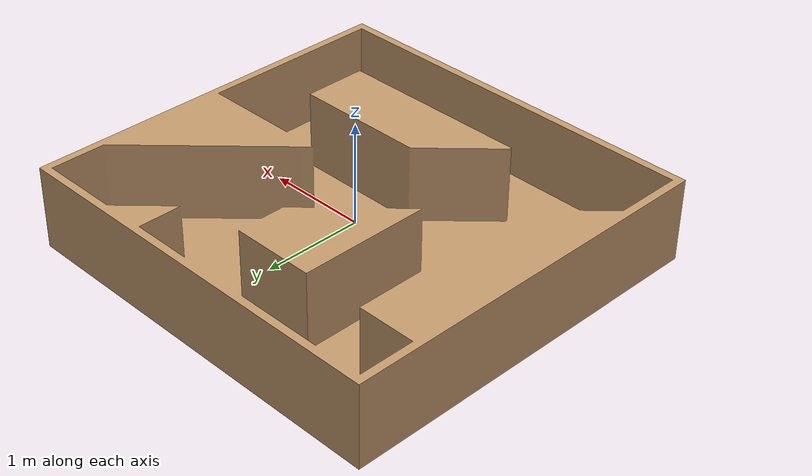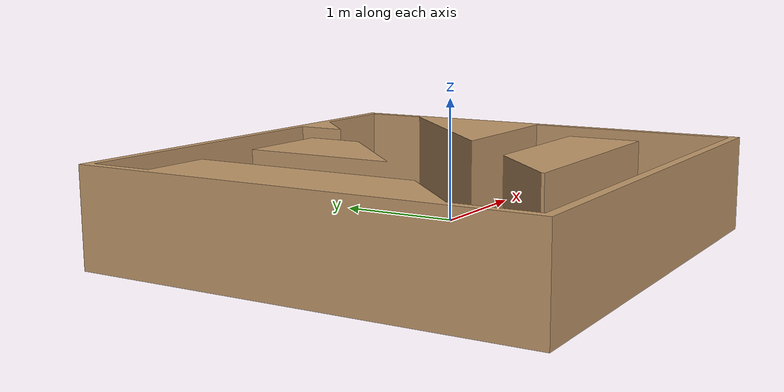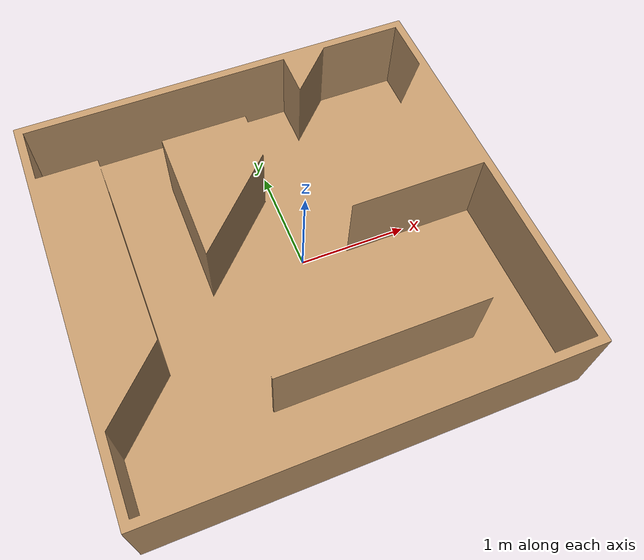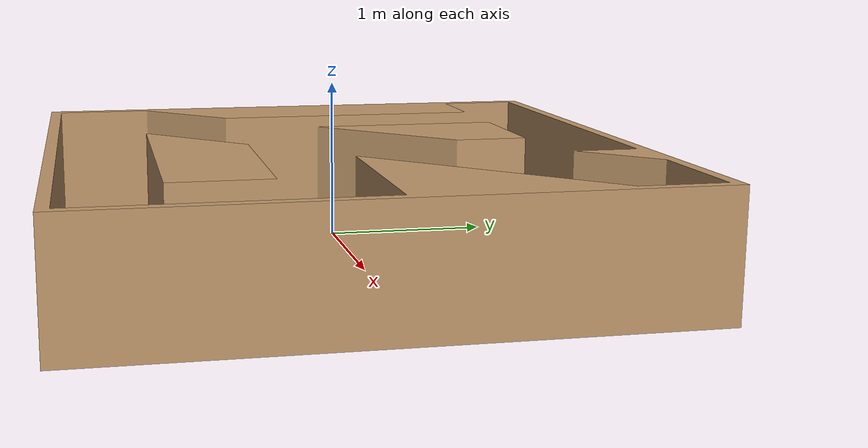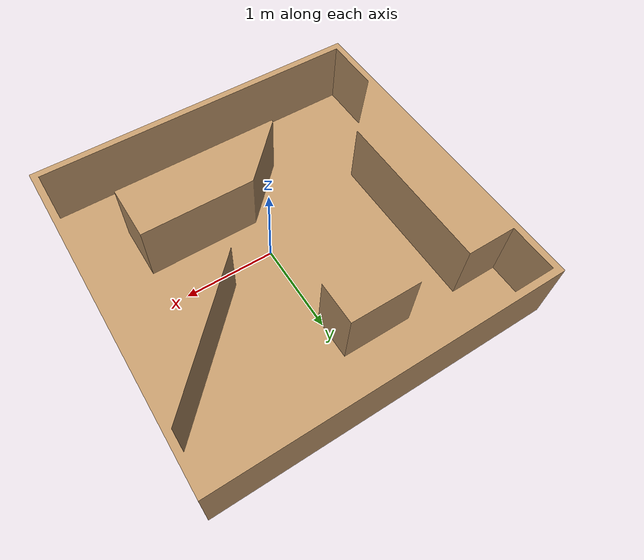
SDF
<?xml version="1.0" ?>
<sdf version="1.5">
  <model name="tic_field">
    <static>true</static>
    <pose>0 0 0.0 0 0 0</pose>
    <link name="link">
      <collision name="collision">
        <geometry>
          <mesh>
            <uri>model://tic_field/meshes/tic_field.STL</uri>
            <scale>1 1 1</scale>
          </mesh>
        </geometry>
      </collision>
      <visual name="visual">
        <geometry>
          <mesh>
            <uri>model://tic_field/meshes/tic_field.STL</uri>
            <scale>1 1 1</scale>
          </mesh>
        </geometry>
        <material>
          <ambient>0.76 0.60 0.42 1</ambient> <!-- Light brown for ambient -->
          <diffuse>0.76 0.60 0.42 1</diffuse> <!-- Light brown for diffuse -->
        </material>
      </visual>
    </link>
  </model>
</sdf>
